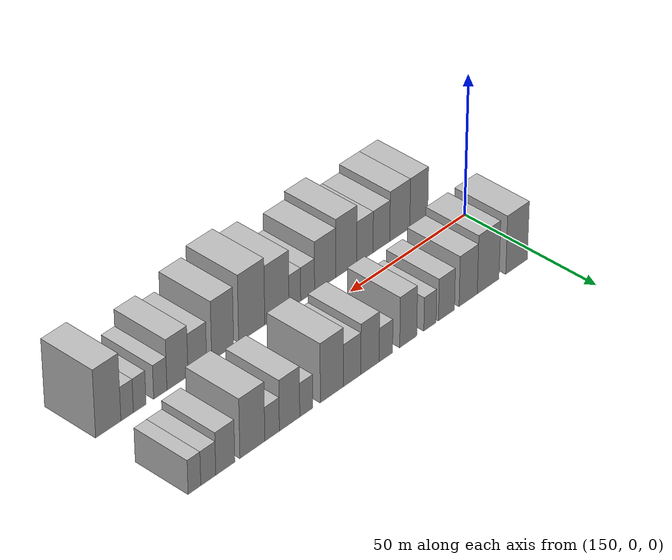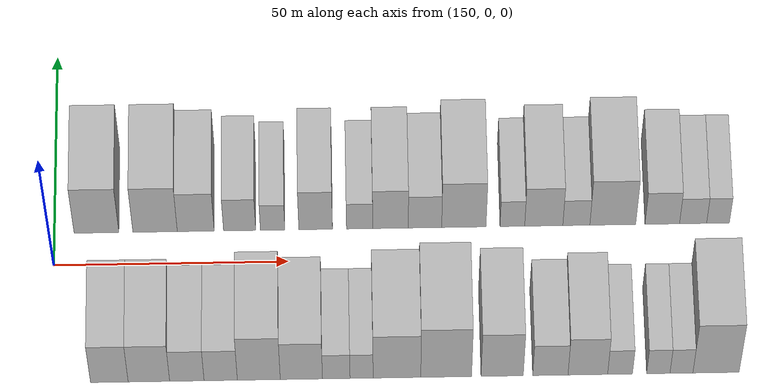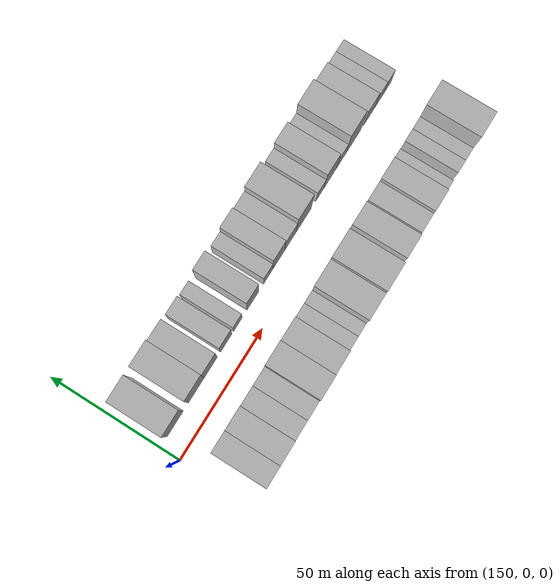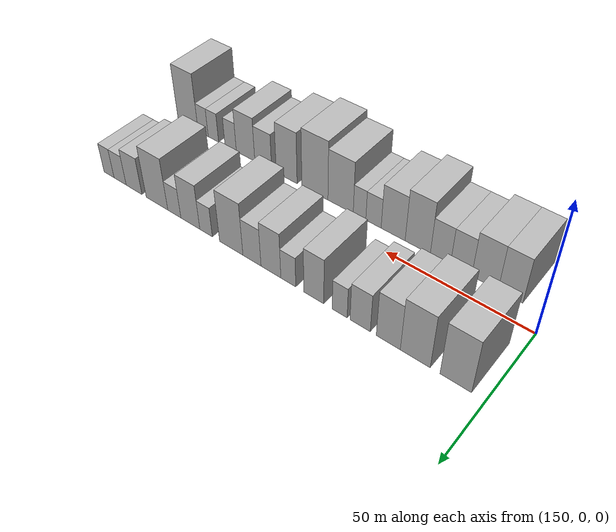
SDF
<sdf version="1.6">
 <world name="default">
  <model name="building_15">
   <static>1</static>
   <pose>158.9572 17.5000 0 0.000000 0.000000 1.570796</pose>
   <link name="link">
    <pose>0 0 10.50 0 0 0</pose>
    <collision name="collision"><geometry><box><size>20.0000 9.5930 21.0000</size></box></geometry></collision>
    <visual name="visual">
     <cast_shadows>0</cast_shadows>
     <geometry><box><size>20.0000 9.5930 21.0000</size></box></geometry>
     <material>
      <script>
       <uri>model://HANNAS_wall/materials/scripts</uri>
       <uri>model://HANNAS_wall/materials/textures</uri>
       <name>vrc/HANNAS_wall</name>
      </script>
     </material>
    </visual>
   </link>
  </model>
  <model name="building_16">
   <static>1</static>
   <pose>171.5148 17.5000 0 0.000000 0.000000 1.570796</pose>
   <link name="link">
    <pose>0 0 10.50 0 0 0</pose>
    <collision name="collision"><geometry><box><size>20.0000 9.5221 21.0000</size></box></geometry></collision>
    <visual name="visual">
     <cast_shadows>0</cast_shadows>
     <geometry><box><size>20.0000 9.5221 21.0000</size></box></geometry>
     <material>
      <script>
       <uri>model://HANNAS_wall/materials/scripts</uri>
       <uri>model://HANNAS_wall/materials/textures</uri>
       <name>vrc/HANNAS_wall</name>
      </script>
     </material>
    </visual>
   </link>
  </model>
  <model name="building_17">
   <static>1</static>
   <pose>180.2313 17.5000 0 0.000000 0.000000 1.570796</pose>
   <link name="link">
    <pose>0 0 9.00 0 0 0</pose>
    <collision name="collision"><geometry><box><size>20.0000 7.9109 18.0000</size></box></geometry></collision>
    <visual name="visual">
     <cast_shadows>0</cast_shadows>
     <geometry><box><size>20.0000 7.9109 18.0000</size></box></geometry>
     <material>
      <script>
       <uri>model://HANNAS_wall/materials/scripts</uri>
       <uri>model://HANNAS_wall/materials/textures</uri>
       <name>vrc/HANNAS_wall</name>
      </script>
     </material>
    </visual>
   </link>
  </model>
  <model name="building_18">
   <static>1</static>
   <pose>189.6379 17.5000 0 0.000000 0.000000 1.570796</pose>
   <link name="link">
    <pose>0 0 7.50 0 0 0</pose>
    <collision name="collision"><geometry><box><size>20.0000 6.9022 15.0000</size></box></geometry></collision>
    <visual name="visual">
     <cast_shadows>0</cast_shadows>
     <geometry><box><size>20.0000 6.9022 15.0000</size></box></geometry>
     <material>
      <script>
       <uri>model://HANNAS_wall/materials/scripts</uri>
       <uri>model://HANNAS_wall/materials/textures</uri>
       <name>vrc/HANNAS_wall</name>
      </script>
     </material>
    </visual>
   </link>
  </model>
  <model name="building_19">
   <static>1</static>
   <pose>196.7116 17.5000 0 0.000000 0.000000 1.570796</pose>
   <link name="link">
    <pose>0 0 6.00 0 0 0</pose>
    <collision name="collision"><geometry><box><size>20.0000 5.2452 12.0000</size></box></geometry></collision>
    <visual name="visual">
     <cast_shadows>0</cast_shadows>
     <geometry><box><size>20.0000 5.2452 12.0000</size></box></geometry>
     <material>
      <script>
       <uri>model://HANNAS_wall/materials/scripts</uri>
       <uri>model://HANNAS_wall/materials/textures</uri>
       <name>vrc/HANNAS_wall</name>
      </script>
     </material>
    </visual>
   </link>
  </model>
  <model name="building_20">
   <static>1</static>
   <pose>205.9429 17.5000 0 0.000000 0.000000 1.570796</pose>
   <link name="link">
    <pose>0 0 9.00 0 0 0</pose>
    <collision name="collision"><geometry><box><size>20.0000 7.2174 18.0000</size></box></geometry></collision>
    <visual name="visual">
     <cast_shadows>0</cast_shadows>
     <geometry><box><size>20.0000 7.2174 18.0000</size></box></geometry>
     <material>
      <script>
       <uri>model://HANNAS_wall/materials/scripts</uri>
       <uri>model://HANNAS_wall/materials/textures</uri>
       <name>vrc/HANNAS_wall</name>
      </script>
     </material>
    </visual>
   </link>
  </model>
  <model name="building_21">
   <static>1</static>
   <pose>215.3597 17.5000 0 0.000000 0.000000 1.570796</pose>
   <link name="link">
    <pose>0 0 6.00 0 0 0</pose>
    <collision name="collision"><geometry><box><size>20.0000 5.6162 12.0000</size></box></geometry></collision>
    <visual name="visual">
     <cast_shadows>0</cast_shadows>
     <geometry><box><size>20.0000 5.6162 12.0000</size></box></geometry>
     <material>
      <script>
       <uri>model://HANNAS_wall/materials/scripts</uri>
       <uri>model://HANNAS_wall/materials/textures</uri>
       <name>vrc/HANNAS_wall</name>
      </script>
     </material>
    </visual>
   </link>
  </model>
  <model name="building_22">
   <static>1</static>
   <pose>221.9842 17.5000 0 0.000000 0.000000 1.570796</pose>
   <link name="link">
    <pose>0 0 9.00 0 0 0</pose>
    <collision name="collision"><geometry><box><size>20.0000 7.6328 18.0000</size></box></geometry></collision>
    <visual name="visual">
     <cast_shadows>0</cast_shadows>
     <geometry><box><size>20.0000 7.6328 18.0000</size></box></geometry>
     <material>
      <script>
       <uri>model://HANNAS_wall/materials/scripts</uri>
       <uri>model://HANNAS_wall/materials/textures</uri>
       <name>vrc/HANNAS_wall</name>
      </script>
     </material>
    </visual>
   </link>
  </model>
  <model name="building_23">
   <static>1</static>
   <pose>229.3829 17.5000 0 0.000000 0.000000 1.570796</pose>
   <link name="link">
    <pose>0 0 7.50 0 0 0</pose>
    <collision name="collision"><geometry><box><size>20.0000 7.1647 15.0000</size></box></geometry></collision>
    <visual name="visual">
     <cast_shadows>0</cast_shadows>
     <geometry><box><size>20.0000 7.1647 15.0000</size></box></geometry>
     <material>
      <script>
       <uri>model://HANNAS_wall/materials/scripts</uri>
       <uri>model://HANNAS_wall/materials/textures</uri>
       <name>vrc/HANNAS_wall</name>
      </script>
     </material>
    </visual>
   </link>
  </model>
  <model name="building_24">
   <static>1</static>
   <pose>237.7203 17.5000 0 0.000000 0.000000 1.570796</pose>
   <link name="link">
    <pose>0 0 10.50 0 0 0</pose>
    <collision name="collision"><geometry><box><size>20.0000 9.5099 21.0000</size></box></geometry></collision>
    <visual name="visual">
     <cast_shadows>0</cast_shadows>
     <geometry><box><size>20.0000 9.5099 21.0000</size></box></geometry>
     <material>
      <script>
       <uri>model://HANNAS_wall/materials/scripts</uri>
       <uri>model://HANNAS_wall/materials/textures</uri>
       <name>vrc/HANNAS_wall</name>
      </script>
     </material>
    </visual>
   </link>
  </model>
  <model name="building_25">
   <static>1</static>
   <pose>248.1216 17.5000 0 0.000000 0.000000 1.570796</pose>
   <link name="link">
    <pose>0 0 6.00 0 0 0</pose>
    <collision name="collision"><geometry><box><size>20.0000 5.2927 12.0000</size></box></geometry></collision>
    <visual name="visual">
     <cast_shadows>0</cast_shadows>
     <geometry><box><size>20.0000 5.2927 12.0000</size></box></geometry>
     <material>
      <script>
       <uri>model://HANNAS_wall/materials/scripts</uri>
       <uri>model://HANNAS_wall/materials/textures</uri>
       <name>vrc/HANNAS_wall</name>
      </script>
     </material>
    </visual>
   </link>
  </model>
  <model name="building_26">
   <static>1</static>
   <pose>254.8613 17.5000 0 0.000000 0.000000 1.570796</pose>
   <link name="link">
    <pose>0 0 9.00 0 0 0</pose>
    <collision name="collision"><geometry><box><size>20.0000 8.1869 18.0000</size></box></geometry></collision>
    <visual name="visual">
     <cast_shadows>0</cast_shadows>
     <geometry><box><size>20.0000 8.1869 18.0000</size></box></geometry>
     <material>
      <script>
       <uri>model://HANNAS_wall/materials/scripts</uri>
       <uri>model://HANNAS_wall/materials/textures</uri>
       <name>vrc/HANNAS_wall</name>
      </script>
     </material>
    </visual>
   </link>
  </model>
  <model name="building_27">
   <static>1</static>
   <pose>261.8539 17.5000 0 0.000000 0.000000 1.570796</pose>
   <link name="link">
    <pose>0 0 6.00 0 0 0</pose>
    <collision name="collision"><geometry><box><size>20.0000 5.7983 12.0000</size></box></geometry></collision>
    <visual name="visual">
     <cast_shadows>0</cast_shadows>
     <geometry><box><size>20.0000 5.7983 12.0000</size></box></geometry>
     <material>
      <script>
       <uri>model://HANNAS_wall/materials/scripts</uri>
       <uri>model://HANNAS_wall/materials/textures</uri>
       <name>vrc/HANNAS_wall</name>
      </script>
     </material>
    </visual>
   </link>
  </model>
  <model name="building_28">
   <static>1</static>
   <pose>269.6706 17.5000 0 0.000000 0.000000 1.570796</pose>
   <link name="link">
    <pose>0 0 10.50 0 0 0</pose>
    <collision name="collision"><geometry><box><size>20.0000 9.8350 21.0000</size></box></geometry></collision>
    <visual name="visual">
     <cast_shadows>0</cast_shadows>
     <geometry><box><size>20.0000 9.8350 21.0000</size></box></geometry>
     <material>
      <script>
       <uri>model://HANNAS_wall/materials/scripts</uri>
       <uri>model://HANNAS_wall/materials/textures</uri>
       <name>vrc/HANNAS_wall</name>
      </script>
     </material>
    </visual>
   </link>
  </model>
  <model name="building_29">
   <static>1</static>
   <pose>280.2941 17.5000 0 0.000000 0.000000 1.570796</pose>
   <link name="link">
    <pose>0 0 7.50 0 0 0</pose>
    <collision name="collision"><geometry><box><size>20.0000 7.4121 15.0000</size></box></geometry></collision>
    <visual name="visual">
     <cast_shadows>0</cast_shadows>
     <geometry><box><size>20.0000 7.4121 15.0000</size></box></geometry>
     <material>
      <script>
       <uri>model://HANNAS_wall/materials/scripts</uri>
       <uri>model://HANNAS_wall/materials/textures</uri>
       <name>vrc/HANNAS_wall</name>
      </script>
     </material>
    </visual>
   </link>
  </model>
  <model name="building_30">
   <static>1</static>
   <pose>286.9088 17.5000 0 0.000000 0.000000 1.570796</pose>
   <link name="link">
    <pose>0 0 6.00 0 0 0</pose>
    <collision name="collision"><geometry><box><size>20.0000 5.8172 12.0000</size></box></geometry></collision>
    <visual name="visual">
     <cast_shadows>0</cast_shadows>
     <geometry><box><size>20.0000 5.8172 12.0000</size></box></geometry>
     <material>
      <script>
       <uri>model://HANNAS_wall/materials/scripts</uri>
       <uri>model://HANNAS_wall/materials/textures</uri>
       <name>vrc/HANNAS_wall</name>
      </script>
     </material>
    </visual>
   </link>
  </model>
  <model name="building_31">
   <static>1</static>
   <pose>292.2611 17.5000 0 0.000000 0.000000 1.570796</pose>
   <link name="link">
    <pose>0 0 6.00 0 0 0</pose>
    <collision name="collision"><geometry><box><size>20.0000 4.8874 12.0000</size></box></geometry></collision>
    <visual name="visual">
     <cast_shadows>0</cast_shadows>
     <geometry><box><size>20.0000 4.8874 12.0000</size></box></geometry>
     <material>
      <script>
       <uri>model://HANNAS_wall/materials/scripts</uri>
       <uri>model://HANNAS_wall/materials/textures</uri>
       <name>vrc/HANNAS_wall</name>
      </script>
     </material>
    </visual>
   </link>
  </model>
  <model name="building_49">
   <static>1</static>
   <pose>162.0627 -17.5000 0 0.000000 0.000000 1.570796</pose>
   <link name="link">
    <pose>0 0 9.00 0 0 0</pose>
    <collision name="collision"><geometry><box><size>20.0000 7.9335 18.0000</size></box></geometry></collision>
    <visual name="visual">
     <cast_shadows>0</cast_shadows>
     <geometry><box><size>20.0000 7.9335 18.0000</size></box></geometry>
     <material>
      <script>
       <uri>model://HANNAS_wall/materials/scripts</uri>
       <uri>model://HANNAS_wall/materials/textures</uri>
       <name>vrc/HANNAS_wall</name>
      </script>
     </material>
    </visual>
   </link>
  </model>
  <model name="building_50">
   <static>1</static>
   <pose>170.4033 -17.5000 0 0.000000 0.000000 1.570796</pose>
   <link name="link">
    <pose>0 0 9.00 0 0 0</pose>
    <collision name="collision"><geometry><box><size>20.0000 8.7477 18.0000</size></box></geometry></collision>
    <visual name="visual">
     <cast_shadows>0</cast_shadows>
     <geometry><box><size>20.0000 8.7477 18.0000</size></box></geometry>
     <material>
      <script>
       <uri>model://HANNAS_wall/materials/scripts</uri>
       <uri>model://HANNAS_wall/materials/textures</uri>
       <name>vrc/HANNAS_wall</name>
      </script>
     </material>
    </visual>
   </link>
  </model>
  <model name="building_51">
   <static>1</static>
   <pose>178.4090 -17.5000 0 0.000000 0.000000 1.570796</pose>
   <link name="link">
    <pose>0 0 7.50 0 0 0</pose>
    <collision name="collision"><geometry><box><size>20.0000 7.2639 15.0000</size></box></geometry></collision>
    <visual name="visual">
     <cast_shadows>0</cast_shadows>
     <geometry><box><size>20.0000 7.2639 15.0000</size></box></geometry>
     <material>
      <script>
       <uri>model://HANNAS_wall/materials/scripts</uri>
       <uri>model://HANNAS_wall/materials/textures</uri>
       <name>vrc/HANNAS_wall</name>
      </script>
     </material>
    </visual>
   </link>
  </model>
  <model name="building_52">
   <static>1</static>
   <pose>185.5512 -17.5000 0 0.000000 0.000000 1.570796</pose>
   <link name="link">
    <pose>0 0 7.50 0 0 0</pose>
    <collision name="collision"><geometry><box><size>20.0000 7.0205 15.0000</size></box></geometry></collision>
    <visual name="visual">
     <cast_shadows>0</cast_shadows>
     <geometry><box><size>20.0000 7.0205 15.0000</size></box></geometry>
     <material>
      <script>
       <uri>model://HANNAS_wall/materials/scripts</uri>
       <uri>model://HANNAS_wall/materials/textures</uri>
       <name>vrc/HANNAS_wall</name>
      </script>
     </material>
    </visual>
   </link>
  </model>
  <model name="building_53">
   <static>1</static>
   <pose>193.5897 -17.5000 0 0.000000 0.000000 1.570796</pose>
   <link name="link">
    <pose>0 0 10.50 0 0 0</pose>
    <collision name="collision"><geometry><box><size>20.0000 9.0563 21.0000</size></box></geometry></collision>
    <visual name="visual">
     <cast_shadows>0</cast_shadows>
     <geometry><box><size>20.0000 9.0563 21.0000</size></box></geometry>
     <material>
      <script>
       <uri>model://HANNAS_wall/materials/scripts</uri>
       <uri>model://HANNAS_wall/materials/textures</uri>
       <name>vrc/HANNAS_wall</name>
      </script>
     </material>
    </visual>
   </link>
  </model>
  <model name="building_54">
   <static>1</static>
   <pose>202.5718 -17.5000 0 0.000000 0.000000 1.570796</pose>
   <link name="link">
    <pose>0 0 9.00 0 0 0</pose>
    <collision name="collision"><geometry><box><size>20.0000 8.9078 18.0000</size></box></geometry></collision>
    <visual name="visual">
     <cast_shadows>0</cast_shadows>
     <geometry><box><size>20.0000 8.9078 18.0000</size></box></geometry>
     <material>
      <script>
       <uri>model://HANNAS_wall/materials/scripts</uri>
       <uri>model://HANNAS_wall/materials/textures</uri>
       <name>vrc/HANNAS_wall</name>
      </script>
     </material>
    </visual>
   </link>
  </model>
  <model name="building_55">
   <static>1</static>
   <pose>209.9312 -17.5000 0 0.000000 0.000000 1.570796</pose>
   <link name="link">
    <pose>0 0 6.00 0 0 0</pose>
    <collision name="collision"><geometry><box><size>20.0000 5.8110 12.0000</size></box></geometry></collision>
    <visual name="visual">
     <cast_shadows>0</cast_shadows>
     <geometry><box><size>20.0000 5.8110 12.0000</size></box></geometry>
     <material>
      <script>
       <uri>model://HANNAS_wall/materials/scripts</uri>
       <uri>model://HANNAS_wall/materials/textures</uri>
       <name>vrc/HANNAS_wall</name>
      </script>
     </material>
    </visual>
   </link>
  </model>
  <model name="building_56">
   <static>1</static>
   <pose>215.2732 -17.5000 0 0.000000 0.000000 1.570796</pose>
   <link name="link">
    <pose>0 0 6.00 0 0 0</pose>
    <collision name="collision"><geometry><box><size>20.0000 4.8730 12.0000</size></box></geometry></collision>
    <visual name="visual">
     <cast_shadows>0</cast_shadows>
     <geometry><box><size>20.0000 4.8730 12.0000</size></box></geometry>
     <material>
      <script>
       <uri>model://HANNAS_wall/materials/scripts</uri>
       <uri>model://HANNAS_wall/materials/textures</uri>
       <name>vrc/HANNAS_wall</name>
      </script>
     </material>
    </visual>
   </link>
  </model>
  <model name="building_57">
   <static>1</static>
   <pose>222.7417 -17.5000 0 0.000000 0.000000 1.570796</pose>
   <link name="link">
    <pose>0 0 10.50 0 0 0</pose>
    <collision name="collision"><geometry><box><size>20.0000 10.0641 21.0000</size></box></geometry></collision>
    <visual name="visual">
     <cast_shadows>0</cast_shadows>
     <geometry><box><size>20.0000 10.0641 21.0000</size></box></geometry>
     <material>
      <script>
       <uri>model://HANNAS_wall/materials/scripts</uri>
       <uri>model://HANNAS_wall/materials/textures</uri>
       <name>vrc/HANNAS_wall</name>
      </script>
     </material>
    </visual>
   </link>
  </model>
  <model name="building_58">
   <static>1</static>
   <pose>233.1329 -17.5000 0 0.000000 0.000000 1.570796</pose>
   <link name="link">
    <pose>0 0 12.00 0 0 0</pose>
    <collision name="collision"><geometry><box><size>20.0000 10.7182 24.0000</size></box></geometry></collision>
    <visual name="visual">
     <cast_shadows>0</cast_shadows>
     <geometry><box><size>20.0000 10.7182 24.0000</size></box></geometry>
     <material>
      <script>
       <uri>model://HANNAS_wall/materials/scripts</uri>
       <uri>model://HANNAS_wall/materials/textures</uri>
       <name>vrc/HANNAS_wall</name>
      </script>
     </material>
    </visual>
   </link>
  </model>
  <model name="building_59">
   <static>1</static>
   <pose>244.9473 -17.5000 0 0.000000 0.000000 1.570796</pose>
   <link name="link">
    <pose>0 0 10.50 0 0 0</pose>
    <collision name="collision"><geometry><box><size>20.0000 8.9107 21.0000</size></box></geometry></collision>
    <visual name="visual">
     <cast_shadows>0</cast_shadows>
     <geometry><box><size>20.0000 8.9107 21.0000</size></box></geometry>
     <material>
      <script>
       <uri>model://HANNAS_wall/materials/scripts</uri>
       <uri>model://HANNAS_wall/materials/textures</uri>
       <name>vrc/HANNAS_wall</name>
      </script>
     </material>
    </visual>
   </link>
  </model>
  <model name="building_60">
   <static>1</static>
   <pose>255.1307 -17.5000 0 0.000000 0.000000 1.570796</pose>
   <link name="link">
    <pose>0 0 7.50 0 0 0</pose>
    <collision name="collision"><geometry><box><size>20.0000 7.4562 15.0000</size></box></geometry></collision>
    <visual name="visual">
     <cast_shadows>0</cast_shadows>
     <geometry><box><size>20.0000 7.4562 15.0000</size></box></geometry>
     <material>
      <script>
       <uri>model://HANNAS_wall/materials/scripts</uri>
       <uri>model://HANNAS_wall/materials/textures</uri>
       <name>vrc/HANNAS_wall</name>
      </script>
     </material>
    </visual>
   </link>
  </model>
  <model name="building_61">
   <static>1</static>
   <pose>263.0437 -17.5000 0 0.000000 0.000000 1.570796</pose>
   <link name="link">
    <pose>0 0 9.00 0 0 0</pose>
    <collision name="collision"><geometry><box><size>20.0000 8.3698 18.0000</size></box></geometry></collision>
    <visual name="visual">
     <cast_shadows>0</cast_shadows>
     <geometry><box><size>20.0000 8.3698 18.0000</size></box></geometry>
     <material>
      <script>
       <uri>model://HANNAS_wall/materials/scripts</uri>
       <uri>model://HANNAS_wall/materials/textures</uri>
       <name>vrc/HANNAS_wall</name>
      </script>
     </material>
    </visual>
   </link>
  </model>
  <model name="building_62">
   <static>1</static>
   <pose>269.8507 -17.5000 0 0.000000 0.000000 1.570796</pose>
   <link name="link">
    <pose>0 0 6.00 0 0 0</pose>
    <collision name="collision"><geometry><box><size>20.0000 5.2442 12.0000</size></box></geometry></collision>
    <visual name="visual">
     <cast_shadows>0</cast_shadows>
     <geometry><box><size>20.0000 5.2442 12.0000</size></box></geometry>
     <material>
      <script>
       <uri>model://HANNAS_wall/materials/scripts</uri>
       <uri>model://HANNAS_wall/materials/textures</uri>
       <name>vrc/HANNAS_wall</name>
      </script>
     </material>
    </visual>
   </link>
  </model>
  <model name="building_63">
   <static>1</static>
   <pose>277.9372 -17.5000 0 0.000000 0.000000 1.570796</pose>
   <link name="link">
    <pose>0 0 6.00 0 0 0</pose>
    <collision name="collision"><geometry><box><size>20.0000 4.9288 12.0000</size></box></geometry></collision>
    <visual name="visual">
     <cast_shadows>0</cast_shadows>
     <geometry><box><size>20.0000 4.9288 12.0000</size></box></geometry>
     <material>
      <script>
       <uri>model://HANNAS_wall/materials/scripts</uri>
       <uri>model://HANNAS_wall/materials/textures</uri>
       <name>vrc/HANNAS_wall</name>
      </script>
     </material>
    </visual>
   </link>
  </model>
  <model name="building_64">
   <static>1</static>
   <pose>282.8239 -17.5000 0 0.000000 0.000000 1.570796</pose>
   <link name="link">
    <pose>0 0 6.00 0 0 0</pose>
    <collision name="collision"><geometry><box><size>20.0000 4.8445 12.0000</size></box></geometry></collision>
    <visual name="visual">
     <cast_shadows>0</cast_shadows>
     <geometry><box><size>20.0000 4.8445 12.0000</size></box></geometry>
     <material>
      <script>
       <uri>model://HANNAS_wall/materials/scripts</uri>
       <uri>model://HANNAS_wall/materials/textures</uri>
       <name>vrc/HANNAS_wall</name>
      </script>
     </material>
    </visual>
   </link>
  </model>
  <model name="building_65">
   <static>1</static>
   <pose>290.1261 -17.5000 0 0.000000 0.000000 1.570796</pose>
   <link name="link">
    <pose>0 0 12.00 0 0 0</pose>
    <collision name="collision"><geometry><box><size>20.0000 9.7599 24.0000</size></box></geometry></collision>
    <visual name="visual">
     <cast_shadows>0</cast_shadows>
     <geometry><box><size>20.0000 9.7599 24.0000</size></box></geometry>
     <material>
      <script>
       <uri>model://HANNAS_wall/materials/scripts</uri>
       <uri>model://HANNAS_wall/materials/textures</uri>
       <name>vrc/HANNAS_wall</name>
      </script>
     </material>
    </visual>
   </link>
  </model>
 </world>
</sdf>
